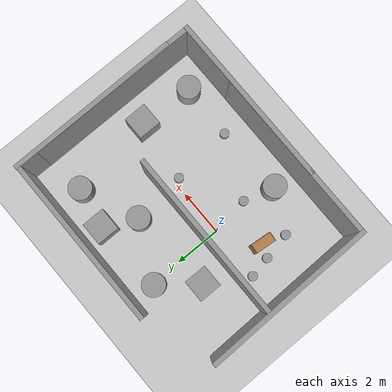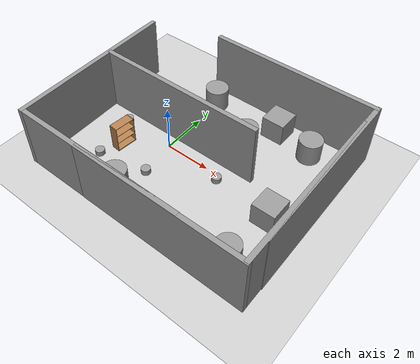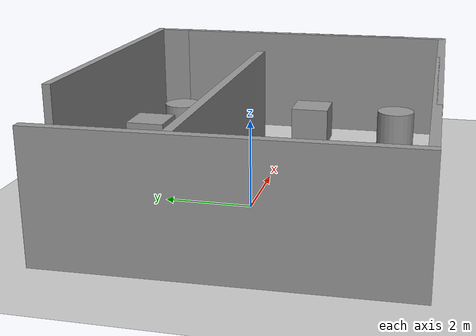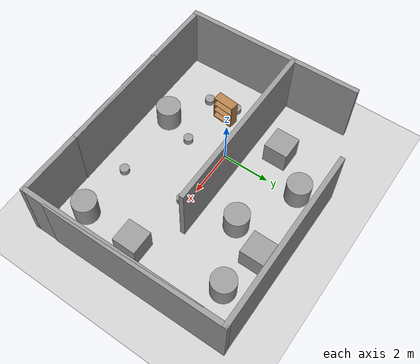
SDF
<sdf version="1.7">
 <world name="default">
  <light name="sun" type="directional">
   <pose>0 0 10 0 -0 0</pose>
   <diffuse>0.8 0.8 0.8 1</diffuse>
   <specular>0.2 0.2 0.2 1</specular>
   <attenuation>
    <range>1000</range>
    <constant>0.9</constant>
    <linear>0.01</linear>
    <quadratic>0.001</quadratic>
   </attenuation>
   <direction>-0.5 0.1 -0.9</direction>
   <spot><inner_angle>0</inner_angle><outer_angle>0</outer_angle><falloff>0</falloff></spot>
  </light>
  <model name="ground_plane">
   <static>1</static>
   <link name="link">
    <collision name="collision">
     <geometry><plane><normal>0 0 1</normal><size>100 100</size></plane></geometry>
     <surface>
      <contact><collide_bitmask>65535</collide_bitmask></contact>
      <friction><ode><mu>100</mu><mu2>50</mu2></ode></friction>
     </surface>
    </collision>
    <visual name="visual">
     <cast_shadows>0</cast_shadows>
     <geometry><plane><normal>0 0 1</normal><size>100 100</size></plane></geometry>
     <material>
      <script><uri>file://media/materials/scripts/gazebo.material</uri><name>Gazebo/Grey</name></script>
     </material>
    </visual>
   </link>
  </model>
  <gravity>0 0 -9.8</gravity>
  <magnetic_field>6e-06 2.3e-05 -4.2e-05</magnetic_field>
  <atmosphere type="adiabatic"/>
  <physics type="ode">
   <max_step_size>0.001</max_step_size>
   <real_time_factor>1</real_time_factor>
   <real_time_update_rate>1000</real_time_update_rate>
  </physics>
  <scene><ambient>0.4 0.4 0.4 1</ambient><background>0.7 0.7 0.7 1</background><shadows>1</shadows></scene>
  <audio><device>default</device></audio>
  <spherical_coordinates>
   <surface_model>EARTH_WGS84</surface_model>
   <latitude_deg>0</latitude_deg>
   <longitude_deg>0</longitude_deg>
   <elevation>0</elevation>
   <heading_deg>0</heading_deg>
  </spherical_coordinates>
  <model name="grey_wall">
   <static>1</static>
   <link name="link">
    <pose>0 0 1.4 0 -0 0</pose>
    <collision name="collision"><geometry><box><size>7.5 0.2 2.8</size></box></geometry></collision>
    <visual name="visual">
     <cast_shadows>0</cast_shadows>
     <geometry><box><size>7.5 0.2 2.8</size></box></geometry>
     <material>
      <script>
       <uri>model://grey_wall/materials/scripts</uri>
       <uri>model://grey_wall/materials/textures</uri>
       <name>vrc/grey_wall</name>
      </script>
     </material>
    </visual>
   </link>
   <pose>-3.69868 -0.325492 0 0 0 -1.5483</pose>
  </model>
  <model name="grey_wall_0">
   <static>1</static>
   <link name="link">
    <pose>0 0 1.4 0 -0 0</pose>
    <collision name="collision"><geometry><box><size>7.5 0.2 2.8</size></box></geometry></collision>
    <visual name="visual">
     <cast_shadows>0</cast_shadows>
     <geometry><box><size>7.5 0.2 2.8</size></box></geometry>
     <material>
      <script>
       <uri>model://grey_wall/materials/scripts</uri>
       <uri>model://grey_wall/materials/textures</uri>
       <name>vrc/grey_wall</name>
      </script>
     </material>
    </visual>
   </link>
   <pose>0.232875 -3.97265 0 0 -0 0</pose>
  </model>
  <model name="grey_wall_1">
   <static>1</static>
   <link name="link">
    <pose>0 0 1.4 0 -0 0</pose>
    <collision name="collision"><geometry><box><size>7.5 0.2 2.8</size></box></geometry></collision>
    <visual name="visual">
     <cast_shadows>0</cast_shadows>
     <geometry><box><size>7.5 0.2 2.8</size></box></geometry>
     <material>
      <script>
       <uri>model://grey_wall/materials/scripts</uri>
       <uri>model://grey_wall/materials/textures</uri>
       <name>vrc/grey_wall</name>
      </script>
     </material>
    </visual>
   </link>
   <pose>0.021685 0.615781 0 0 -0 0</pose>
  </model>
  <model name="grey_wall_2">
   <static>1</static>
   <link name="link">
    <pose>0 0 1.4 0 -0 0</pose>
    <collision name="collision"><geometry><box><size>7.5 0.2 2.8</size></box></geometry></collision>
    <visual name="visual">
     <cast_shadows>0</cast_shadows>
     <geometry><box><size>7.5 0.2 2.8</size></box></geometry>
     <material>
      <script>
       <uri>model://grey_wall/materials/scripts</uri>
       <uri>model://grey_wall/materials/textures</uri>
       <name>vrc/grey_wall</name>
      </script>
     </material>
    </visual>
   </link>
   <pose>2.92994 4.36143 0 0 -0 0</pose>
  </model>
  <model name="grey_wall_3">
   <static>1</static>
   <link name="link">
    <pose>0 0 1.4 0 -0 0</pose>
    <collision name="collision"><geometry><box><size>7.5 0.2 2.8</size></box></geometry></collision>
    <visual name="visual">
     <cast_shadows>0</cast_shadows>
     <geometry><box><size>7.5 0.2 2.8</size></box></geometry>
     <material>
      <script>
       <uri>model://grey_wall/materials/scripts</uri>
       <uri>model://grey_wall/materials/textures</uri>
       <name>vrc/grey_wall</name>
      </script>
     </material>
    </visual>
   </link>
   <pose>6.60384 -0.274584 0 0 -0 1.5755</pose>
  </model>
  <model name="grey_wall_4">
   <static>1</static>
   <link name="link">
    <pose>0 0 1.4 0 -0 0</pose>
    <collision name="collision"><geometry><box><size>7.5 0.2 2.8</size></box></geometry></collision>
    <visual name="visual">
     <cast_shadows>0</cast_shadows>
     <geometry><box><size>7.5 0.2 2.8</size></box></geometry>
     <material>
      <script>
       <uri>model://grey_wall/materials/scripts</uri>
       <uri>model://grey_wall/materials/textures</uri>
       <name>vrc/grey_wall</name>
      </script>
     </material>
    </visual>
   </link>
   <pose>2.97704 -3.98133 0 0 -0 0</pose>
  </model>
  <model name="grey_wall_5">
   <static>1</static>
   <link name="link">
    <pose>0 0 1.4 0 -0 0</pose>
    <collision name="collision"><geometry><box><size>7.5 0.2 2.8</size></box></geometry></collision>
    <visual name="visual">
     <cast_shadows>0</cast_shadows>
     <geometry><box><size>7.5 0.2 2.8</size></box></geometry>
     <material>
      <script>
       <uri>model://grey_wall/materials/scripts</uri>
       <uri>model://grey_wall/materials/textures</uri>
       <name>vrc/grey_wall</name>
      </script>
     </material>
    </visual>
   </link>
   <pose>6.61575 0.7244 0 0 -0 1.57798</pose>
  </model>
  <model name="unit_cylinder">
   <pose>2.66221 -0.227052 0.119158 0 -1e-06 0</pose>
   <link name="link">
    <inertial>
     <mass>1</mass>
     <inertia><ixx>0.145833</ixx><ixy>0</ixy><ixz>0</ixz><iyy>0.145833</iyy><iyz>0</iyz><izz>0.125</izz></inertia>
    </inertial>
    <collision name="collision">
     <geometry><cylinder><radius>0.200487</radius><length>0.238321</length></cylinder></geometry>
    </collision>
    <visual name="visual">
     <geometry><cylinder><radius>0.200487</radius><length>0.238321</length></cylinder></geometry>
     <material>
      <script><name>Gazebo/Grey</name><uri>file://media/materials/scripts/gazebo.material</uri></script>
     </material>
    </visual>
   </link>
  </model>
  <model name="unit_cylinder_1">
   <pose>-0.153081 -2.91011 0.499994 4e-06 1e-06 0</pose>
   <link name="link">
    <inertial>
     <mass>1</mass>
     <inertia><ixx>0.145833</ixx><ixy>0</ixy><ixz>0</ixz><iyy>0.145833</iyy><iyz>0</iyz><izz>0.125</izz></inertia>
    </inertial>
    <collision name="collision">
     <geometry><cylinder><radius>0.5</radius><length>1</length></cylinder></geometry>
    </collision>
    <visual name="visual">
     <geometry><cylinder><radius>0.5</radius><length>1</length></cylinder></geometry>
     <material>
      <script><name>Gazebo/Grey</name><uri>file://media/materials/scripts/gazebo.material</uri></script>
     </material>
    </visual>
   </link>
  </model>
  <model name="unit_box_0">
   <pose>5.30218 -0.510846 0.5 0 -0 1e-05</pose>
   <link name="link">
    <inertial>
     <mass>1</mass>
     <inertia>
      <ixx>0.166667</ixx>
      <ixy>0</ixy>
      <ixz>0</ixz>
      <iyy>0.166667</iyy>
      <iyz>0</iyz>
      <izz>0.166667</izz>
     </inertia>
    </inertial>
    <collision name="collision"><geometry><box><size>1 1 1</size></box></geometry></collision>
    <visual name="visual">
     <geometry><box><size>1 1 1</size></box></geometry>
     <material>
      <script><name>Gazebo/Grey</name><uri>file://media/materials/scripts/gazebo.material</uri></script>
     </material>
    </visual>
   </link>
  </model>
  <model name="unit_cylinder_2">
   <pose>5.19 -2.86076 0.499995 -2e-06 -1e-06 0</pose>
   <link name="link">
    <inertial>
     <mass>1</mass>
     <inertia><ixx>0.145833</ixx><ixy>0</ixy><ixz>0</ixz><iyy>0.145833</iyy><iyz>0</iyz><izz>0.125</izz></inertia>
    </inertial>
    <collision name="collision">
     <geometry><cylinder><radius>0.5</radius><length>1</length></cylinder></geometry>
    </collision>
    <visual name="visual">
     <geometry><cylinder><radius>0.5</radius><length>1</length></cylinder></geometry>
     <material>
      <script><name>Gazebo/Grey</name><uri>file://media/materials/scripts/gazebo.material</uri></script>
     </material>
    </visual>
   </link>
  </model>
  <model name="unit_cylinder_3">
   <pose>4.78545 3.1428 0.499997 0 -0 0</pose>
   <link name="link">
    <inertial>
     <mass>1</mass>
     <inertia><ixx>0.145833</ixx><ixy>0</ixy><ixz>0</ixz><iyy>0.145833</iyy><iyz>0</iyz><izz>0.125</izz></inertia>
    </inertial>
    <collision name="collision">
     <geometry><cylinder><radius>0.5</radius><length>1</length></cylinder></geometry>
    </collision>
    <visual name="visual">
     <geometry><cylinder><radius>0.5</radius><length>1</length></cylinder></geometry>
     <material>
      <script><name>Gazebo/Grey</name><uri>file://media/materials/scripts/gazebo.material</uri></script>
     </material>
    </visual>
   </link>
  </model>
  <model name="unit_cylinder_4">
   <pose>2.37044 2.10252 0.499997 0 -0 0</pose>
   <link name="link">
    <inertial>
     <mass>1</mass>
     <inertia><ixx>0.145833</ixx><ixy>0</ixy><ixz>0</ixz><iyy>0.145833</iyy><iyz>0</iyz><izz>0.125</izz></inertia>
    </inertial>
    <collision name="collision">
     <geometry><cylinder><radius>0.5</radius><length>1</length></cylinder></geometry>
    </collision>
    <visual name="visual">
     <geometry><cylinder><radius>0.5</radius><length>1</length></cylinder></geometry>
     <material>
      <script><name>Gazebo/Grey</name><uri>file://media/materials/scripts/gazebo.material</uri></script>
     </material>
    </visual>
   </link>
  </model>
  <model name="unit_cylinder_5">
   <pose>-0.069002 3.3247 0.499993 -3e-06 -2e-06 0</pose>
   <link name="link">
    <inertial>
     <mass>1</mass>
     <inertia><ixx>0.145833</ixx><ixy>0</ixy><ixz>0</ixz><iyy>0.145833</iyy><iyz>0</iyz><izz>0.125</izz></inertia>
    </inertial>
    <collision name="collision">
     <geometry><cylinder><radius>0.5</radius><length>1</length></cylinder></geometry>
    </collision>
    <visual name="visual">
     <geometry><cylinder><radius>0.5</radius><length>1</length></cylinder></geometry>
     <material>
      <script><name>Gazebo/Grey</name><uri>file://media/materials/scripts/gazebo.material</uri></script>
     </material>
    </visual>
   </link>
  </model>
  <model name="unit_box_1">
   <pose>-1.27546 1.8023 0.5 0 -0 0</pose>
   <link name="link">
    <inertial>
     <mass>1</mass>
     <inertia>
      <ixx>0.166667</ixx>
      <ixy>0</ixy>
      <ixz>0</ixz>
      <iyy>0.166667</iyy>
      <iyz>0</iyz>
      <izz>0.166667</izz>
     </inertia>
    </inertial>
    <collision name="collision"><geometry><box><size>1 1 1</size></box></geometry></collision>
    <visual name="visual">
     <geometry><box><size>1 1 1</size></box></geometry>
     <material>
      <script><name>Gazebo/Grey</name><uri>file://media/materials/scripts/gazebo.material</uri></script>
     </material>
    </visual>
   </link>
  </model>
  <model name="unit_box_2">
   <pose>3.06126 3.47851 0.5 0 -0 5e-06</pose>
   <link name="link">
    <inertial>
     <mass>1</mass>
     <inertia>
      <ixx>0.166667</ixx>
      <ixy>0</ixy>
      <ixz>0</ixz>
      <iyy>0.166667</iyy>
      <iyz>0</iyz>
      <izz>0.166667</izz>
     </inertia>
    </inertial>
    <collision name="collision"><geometry><box><size>1 1 1</size></box></geometry></collision>
    <visual name="visual">
     <geometry><box><size>1 1 1</size></box></geometry>
     <material>
      <script><name>Gazebo/Grey</name><uri>file://media/materials/scripts/gazebo.material</uri></script>
     </material>
    </visual>
   </link>
  </model>
  <model name="unit_cylinder_clone_1">
   <pose>0.226873 -1.65613 0.119158 0 -1e-06 0</pose>
   <link name="link">
    <inertial>
     <mass>1</mass>
     <inertia><ixx>0.145833</ixx><ixy>0</ixy><ixz>0</ixz><iyy>0.145833</iyy><iyz>0</iyz><izz>0.125</izz></inertia>
    </inertial>
    <collision name="collision">
     <geometry><cylinder><radius>0.200487</radius><length>0.238321</length></cylinder></geometry>
    </collision>
    <visual name="visual">
     <geometry><cylinder><radius>0.200487</radius><length>0.238321</length></cylinder></geometry>
     <material>
      <script><name>Gazebo/Grey</name><uri>file://media/materials/scripts/gazebo.material</uri></script>
     </material>
    </visual>
   </link>
  </model>
  <model name="unit_cylinder_clone_2">
   <pose>2.88033 -2.86967 0.119153 0 1e-06 0</pose>
   <link name="link">
    <inertial>
     <mass>1</mass>
     <inertia><ixx>0.145833</ixx><ixy>0</ixy><ixz>0</ixz><iyy>0.145833</iyy><iyz>0</iyz><izz>0.125</izz></inertia>
    </inertial>
    <collision name="collision">
     <geometry><cylinder><radius>0.200487</radius><length>0.238321</length></cylinder></geometry>
    </collision>
    <visual name="visual">
     <geometry><cylinder><radius>0.200487</radius><length>0.238321</length></cylinder></geometry>
     <material>
      <script><name>Gazebo/Grey</name><uri>file://media/materials/scripts/gazebo.material</uri></script>
     </material>
    </visual>
   </link>
  </model>
  <model name="unit_cylinder_clone_1_clone">
   <pose>-2.17142 -0.877521 0.119153 0 -0 0</pose>
   <link name="link">
    <inertial>
     <mass>1</mass>
     <inertia><ixx>0.145833</ixx><ixy>0</ixy><ixz>0</ixz><iyy>0.145833</iyy><iyz>0</iyz><izz>0.125</izz></inertia>
    </inertial>
    <collision name="collision">
     <geometry><cylinder><radius>0.200487</radius><length>0.238321</length></cylinder></geometry>
    </collision>
    <visual name="visual">
     <geometry><cylinder><radius>0.200487</radius><length>0.238321</length></cylinder></geometry>
     <material>
      <script><name>Gazebo/Grey</name><uri>file://media/materials/scripts/gazebo.material</uri></script>
     </material>
    </visual>
   </link>
  </model>
  <model name="unit_cylinder_clone_1_clone_0">
   <pose>-1.93926 -2.07582 0.11916 0 -1e-06 0</pose>
   <link name="link">
    <inertial>
     <mass>1</mass>
     <inertia><ixx>0.145833</ixx><ixy>0</ixy><ixz>0</ixz><iyy>0.145833</iyy><iyz>0</iyz><izz>0.125</izz></inertia>
    </inertial>
    <collision name="collision">
     <geometry><cylinder><radius>0.200487</radius><length>0.238321</length></cylinder></geometry>
    </collision>
    <visual name="visual">
     <geometry><cylinder><radius>0.200487</radius><length>0.238321</length></cylinder></geometry>
     <material>
      <script><name>Gazebo/Grey</name><uri>file://media/materials/scripts/gazebo.material</uri></script>
     </material>
    </visual>
   </link>
  </model>
  <model name="unit_cylinder_clone_1_clone_1">
   <pose>-2.36008 0.047609 0.119153 0 -0 0</pose>
   <link name="link">
    <inertial>
     <mass>1</mass>
     <inertia><ixx>0.145833</ixx><ixy>0</ixy><ixz>0</ixz><iyy>0.145833</iyy><iyz>0</iyz><izz>0.125</izz></inertia>
    </inertial>
    <collision name="collision">
     <geometry><cylinder><radius>0.200487</radius><length>0.238321</length></cylinder></geometry>
    </collision>
    <visual name="visual">
     <geometry><cylinder><radius>0.200487</radius><length>0.238321</length></cylinder></geometry>
     <material>
      <script><name>Gazebo/Grey</name><uri>file://media/materials/scripts/gazebo.material</uri></script>
     </material>
    </visual>
   </link>
  </model>
  <model name="bookshelf">
   <static>1</static>
   <link name="link">
    <inertial><mass>1</mass></inertial>
    <collision name="back">
     <pose>0 0.005 0.6 0 -0 0</pose>
     <geometry><box><size>0.9 0.01 1.2</size></box></geometry>
    </collision>
    <visual name="visual1">
     <pose>0 0.005 0.6 0 -0 0</pose>
     <geometry><box><size>0.9 0.01 1.2</size></box></geometry>
     <material>
      <script><uri>file://media/materials/scripts/gazebo.material</uri><name>Gazebo/Wood</name></script>
     </material>
    </visual>
    <collision name="left_side">
     <pose>0.45 -0.195 0.6 0 -0 0</pose>
     <geometry><box><size>0.02 0.4 1.2</size></box></geometry>
    </collision>
    <visual name="visual2">
     <pose>0.45 -0.195 0.6 0 -0 0</pose>
     <geometry><box><size>0.02 0.4 1.2</size></box></geometry>
     <material>
      <script><uri>file://media/materials/scripts/gazebo.material</uri><name>Gazebo/Wood</name></script>
     </material>
    </visual>
    <collision name="right_side">
     <pose>-0.45 -0.195 0.6 0 -0 0</pose>
     <geometry><box><size>0.02 0.4 1.2</size></box></geometry>
    </collision>
    <visual name="visual3">
     <pose>-0.45 -0.195 0.6 0 -0 0</pose>
     <geometry><box><size>0.02 0.4 1.2</size></box></geometry>
     <material>
      <script><uri>file://media/materials/scripts/gazebo.material</uri><name>Gazebo/Wood</name></script>
     </material>
    </visual>
    <collision name="bottom">
     <pose>0 -0.195 0.03 0 -0 0</pose>
     <geometry><box><size>0.88 0.4 0.06</size></box></geometry>
    </collision>
    <visual name="visual4">
     <pose>0 -0.195 0.03 0 -0 0</pose>
     <geometry><box><size>0.88 0.4 0.06</size></box></geometry>
     <material>
      <script><uri>file://media/materials/scripts/gazebo.material</uri><name>Gazebo/Wood</name></script>
     </material>
    </visual>
    <collision name="top">
     <pose>0 -0.195 1.19 0 -0 0</pose>
     <geometry><box><size>0.88 0.4 0.02</size></box></geometry>
    </collision>
    <visual name="visual5">
     <pose>0 -0.195 1.19 0 -0 0</pose>
     <geometry><box><size>0.88 0.4 0.02</size></box></geometry>
     <material>
      <script><uri>file://media/materials/scripts/gazebo.material</uri><name>Gazebo/Wood</name></script>
     </material>
    </visual>
    <collision name="low_shelf">
     <pose>0 -0.195 0.43 0 -0 0</pose>
     <geometry><box><size>0.88 0.4 0.02</size></box></geometry>
    </collision>
    <visual name="visual6">
     <pose>0 -0.195 0.43 0 -0 0</pose>
     <geometry><box><size>0.88 0.4 0.02</size></box></geometry>
     <material>
      <script><uri>file://media/materials/scripts/gazebo.material</uri><name>Gazebo/Wood</name></script>
     </material>
    </visual>
    <collision name="high_shelf">
     <pose>0 -0.195 0.8 0 -0 0</pose>
     <geometry><box><size>0.88 0.4 0.02</size></box></geometry>
    </collision>
    <visual name="visual7">
     <pose>0 -0.195 0.8 0 -0 0</pose>
     <geometry><box><size>0.88 0.4 0.02</size></box></geometry>
     <material>
      <script><uri>file://media/materials/scripts/gazebo.material</uri><name>Gazebo/Wood</name></script>
     </material>
    </visual>
   </link>
   <pose>-1.75899 -1.03405 0 -0.008413 -0.000795 1.47657</pose>
  </model>
 </world>
</sdf>
